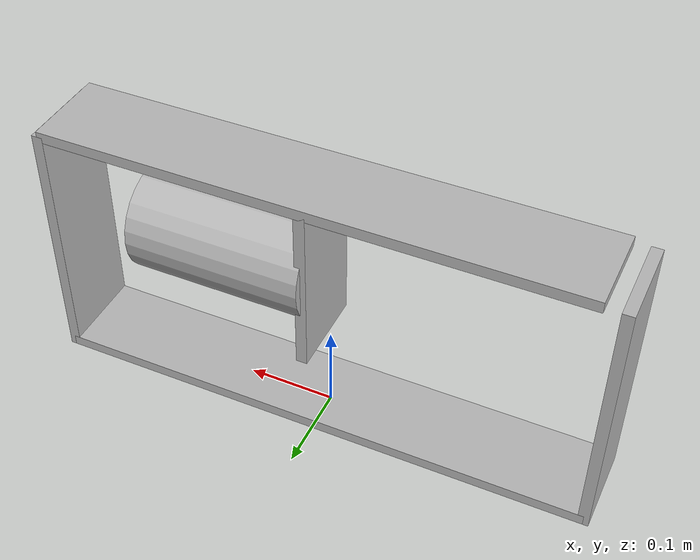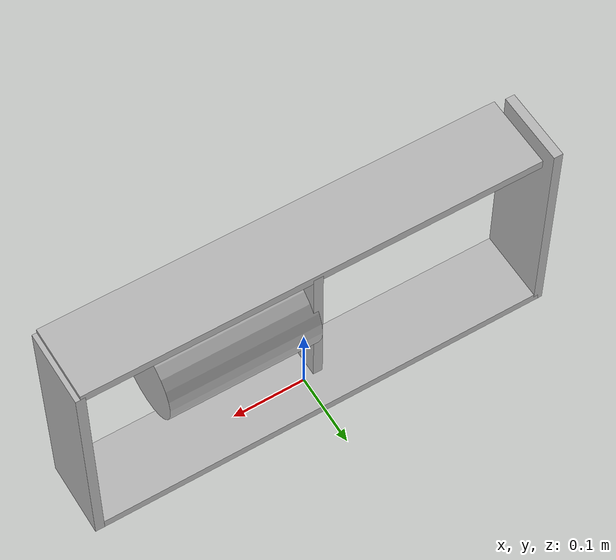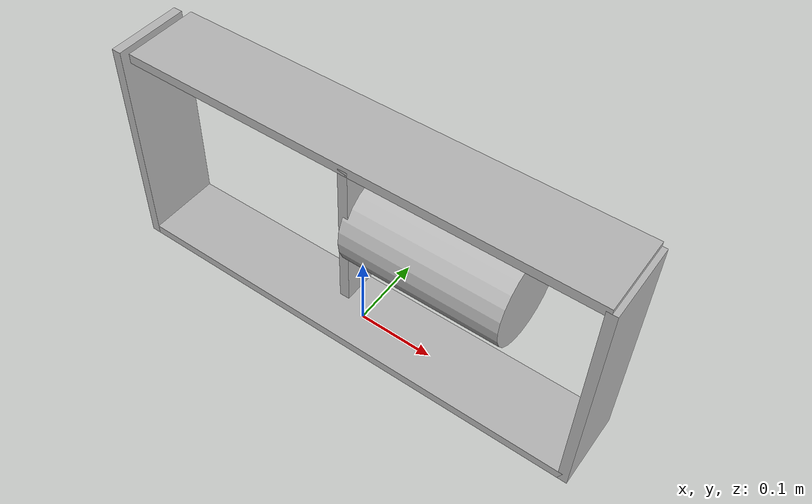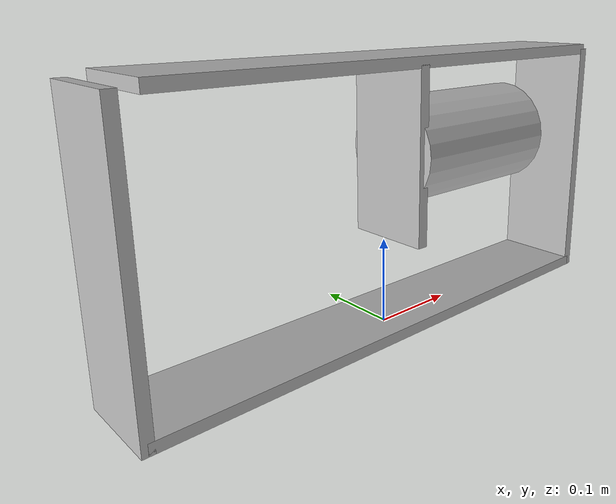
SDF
<sdf version='1.7'>
  <model name='seastar'>
    <link name='imu_link'>
      <inertial>
        <pose>0.103717 0.016667 0.102067 0 -0 0</pose>
        <mass>1.5</mass>
        <inertia>
          <ixx>0.0164826</ixx>
          <ixy>-0.00518583</ixy>
          <ixz>0.0149145</ixz>
          <iyy>0.159634</iyy>
          <iyz>0.00239667</iyz>
          <izz>0.147318</izz>
        </inertia>
      </inertial>
      <collision name='imu_link_fixed_joint_lump__base_link_collision'>
        <pose>0.31115 0.05 0.0062 0 -0 0</pose>
        <geometry>
          <box>
            <size>0.6223 0.1 0.0124</size>
          </box>
        </geometry>
      </collision>
      <collision name='imu_link_fixed_joint_lump__upright1_link_collision_1'>
        <pose>0.31115 0 0.15 0 -1.5708 0</pose>
        <geometry>
          <box>
            <size>0.3 0.1 0.0125</size>
          </box>
        </geometry>
      </collision>
      <collision name='imu_link_fixed_joint_lump__upright2_link_collision_2'>
        <pose>-0.31115 0 0.15 0 -1.5708 0</pose>
        <geometry>
          <box>
            <size>0.3 0.1 0.0125</size>
          </box>
        </geometry>
      </collision>
      <visual name='imu_link_fixed_joint_lump__base_link_visual'>
        <pose>0 0 0.0062 0 -0 0</pose>
        <geometry>
          <box>
            <size>0.6223 0.1 0.0124</size>
          </box>
        </geometry>
      </visual>
      <visual name='imu_link_fixed_joint_lump__upright1_link_visual_1'>
        <pose>0.31115 0 0.15 0 -1.5708 0</pose>
        <geometry>
          <box>
            <size>0.3 0.1 0.0125</size>
          </box>
        </geometry>
      </visual>
      <visual name='imu_link_fixed_joint_lump__upright2_link_visual_2'>
        <pose>-0.31115 0 0.15 0 -1.5708 0</pose>
        <geometry>
          <box>
            <size>0.3 0.1 0.0125</size>
          </box>
        </geometry>
      </visual>
    </link>
    <joint name='upright1_to_roll_joint' type='revolute'>
      <pose relative_to='imu_link'>0.31115 0 0.3 3.14159 -0 3.14159</pose>
      <parent>imu_link</parent>
      <child>roll_link</child>
      <axis>
        <xyz>1 0 0</xyz>
        <limit>
          <lower>0</lower>
          <upper>3.14159</upper>
          <effort>100</effort>
          <velocity>100</velocity>
        </limit>
        <dynamics>
          <spring_reference>0</spring_reference>
          <spring_stiffness>0</spring_stiffness>
        </dynamics>
      </axis>
    </joint>
    <link name='roll_link'>
      <pose relative_to='upright1_to_roll_joint'>0 0 0 0 -0 0</pose>
      <inertial>
        <pose>0.3 0 0 0 -0 0</pose>
        <mass>0.5</mass>
        <inertia>
          <ixx>0.000423177</ixx>
          <ixy>0</ixy>
          <ixz>0</ixz>
          <iyy>0.0150065</iyy>
          <iyz>0</iyz>
          <izz>0.0154167</izz>
        </inertia>
      </inertial>
      <collision name='roll_link_collision'>
        <pose>0.3 0 0 0 -0 0</pose>
        <geometry>
          <box>
            <size>0.6 0.1 0.0125</size>
          </box>
        </geometry>
      </collision>
      <visual name='roll_link_visual'>
        <pose>0.3 0 0 0 -0 0</pose>
        <geometry>
          <box>
            <size>0.6 0.1 0.0125</size>
          </box>
        </geometry>
      </visual>
    </link>
    <joint name='roll_to_pitch_joint' type='revolute'>
      <pose relative_to='roll_link'>0.3 0 0 0 -1.5708 0</pose>
      <parent>roll_link</parent>
      <child>pitch_link</child>
      <axis>
        <xyz>1 0 0</xyz>
        <limit>
          <lower>0</lower>
          <upper>3.14159</upper>
          <effort>100</effort>
          <velocity>100</velocity>
        </limit>
        <dynamics>
          <spring_reference>0</spring_reference>
          <spring_stiffness>0</spring_stiffness>
        </dynamics>
      </axis>
    </joint>
    <link name='pitch_link'>
      <pose relative_to='roll_to_pitch_joint'>0 0 0 0 -0 0</pose>
      <inertial>
        <pose>0.1 0 0 0 -0 0</pose>
        <mass>0.5</mass>
        <inertia>
          <ixx>0.000423177</ixx>
          <ixy>0</ixy>
          <ixz>0</ixz>
          <iyy>0.00167318</iyy>
          <iyz>0</iyz>
          <izz>0.00208333</izz>
        </inertia>
      </inertial>
      <collision name='pitch_link_collision'>
        <pose>0.1 0 0 0 -0 0</pose>
        <geometry>
          <box>
            <size>0.2 0.1 0.0125</size>
          </box>
        </geometry>
      </collision>
      <visual name='pitch_link_visual'>
        <pose>0.1 0 0 0 -0 0</pose>
        <geometry>
          <box>
            <size>0.2 0.1 0.0125</size>
          </box>
        </geometry>
      </visual>
    </link>
    <joint name='pitch_to_stokes_joint' type='revolute'>
      <pose relative_to='pitch_link'>0.1 0 0 0 -1.5708 0</pose>
      <parent>pitch_link</parent>
      <child>stokes_link</child>
      <axis>
        <xyz>1 0 0</xyz>
        <limit>
          <lower>-1.5708</lower>
          <upper>1.5708</upper>
          <effort>100</effort>
          <velocity>100</velocity>
        </limit>
        <dynamics>
          <spring_reference>0</spring_reference>
          <spring_stiffness>0</spring_stiffness>
        </dynamics>
      </axis>
    </joint>
    <link name='stokes_link'>
      <pose relative_to='pitch_to_stokes_joint'>0 0 0 0 -0 0</pose>
      <inertial>
        <pose>0.1 0 0 0 -0 0</pose>
        <mass>0.5</mass>
        <inertia>
          <ixx>0.00211667</ixx>
          <ixy>0</ixy>
          <ixz>0</ixz>
          <iyy>0.00211667</iyy>
          <iyz>0</iyz>
          <izz>0.0009</izz>
        </inertia>
      </inertial>
      <collision name='stokes_link_collision'>
        <pose>0.1 0 0 0 -0 0</pose>
        <geometry>
          <cylinder>
            <length>0.2</length>
            <radius>0.06</radius>
          </cylinder>
        </geometry>
      </collision>
      <visual name='stokes_link_visual'>
        <pose>0.1 0 0 0 1.5708 0</pose>
        <geometry>
          <cylinder>
            <length>0.2</length>
            <radius>0.06</radius>
          </cylinder>
        </geometry>
      </visual>
    </link>
  </model>
</sdf>
